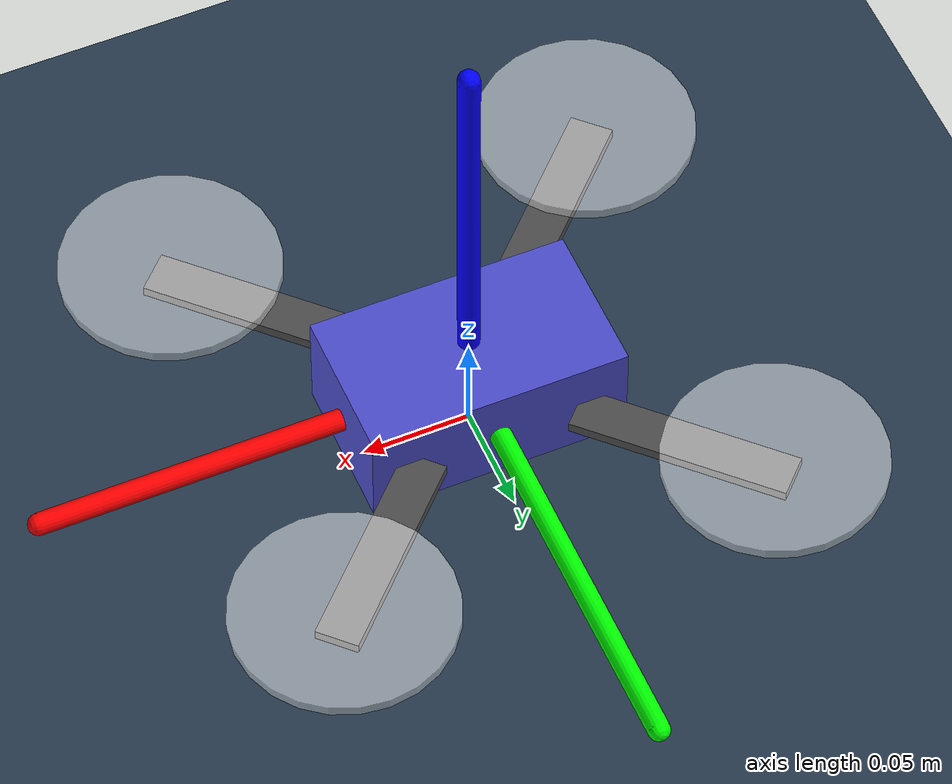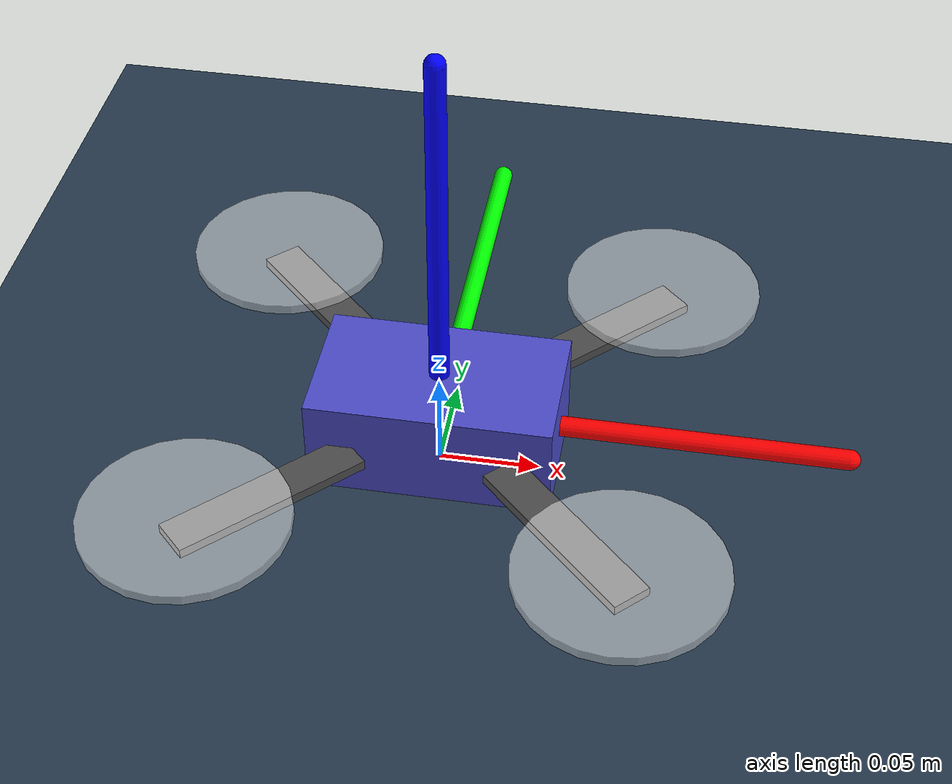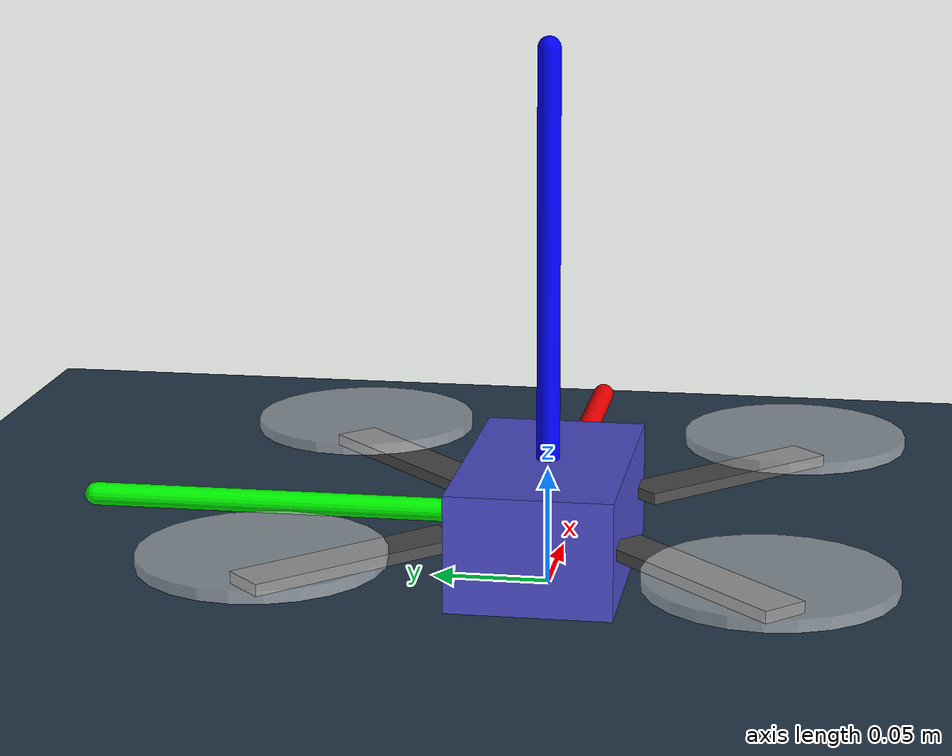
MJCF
<!-- Required Tag for Mujoco Files -->
<mujoco model="Quadrotor">
    <!-- Express angles in radians -->
    <compiler angle="radian"/>
    <option timestep="0.01" density="1.2" viscosity="0.00002"/>
    <!--
        - njmax: maximum number of scalar constraints handled at runtime
        - nconmax: Maximum number of contacts handled at runtime
    -->
    <size njmax="1000" nconmax="4000"/>

    <asset>
        <texture type="skybox" builtin="gradient" rgb1="0.3 0.5 0.7" rgb2="0 0 0" width="512" height="512"/>

        <texture name="texplane" type="2d" builtin="checker" rgb1=".2 .3 .4" rgb2=".1 0.15 0.2" width="512" height="512" mark="cross" markrgb=".8 .8 .8"/>

        <texture name="texgeom" type="cube" builtin="flat" mark="cross" width="127" height="1278"
            rgb1="0.8 0.6 0.4" rgb2="0.8 0.6 0.4" markrgb="1 1 1" random="0.01"/>

        <material name="matplane" reflectance="0.3" texture="texplane" texrepeat="1 1" texuniform="true"/>

        <material name="matgeom" texture="texgeom" texuniform="true" rgba="0.8 0.6 .4 1"/>
    </asset>

    <worldbody>
        <geom name="floor" pos="0 0 0" size="0 0 .25" type="plane" material="matplane" condim="3"/>
        <light directional="false" diffuse=".2 .2 .2" specular="0 0 0" pos="0 0 5" dir="0 0 -1" castshadow="false"/>
        <light mode="targetbodycom" target="quadrotor" castshadow="false" directional="false" diffuse=".8 .8 .8" specular="0.3 0.3 0.3" pos="0 0 4.0" dir="0 0 -1"/>
        <body name="quadrotor" pos="0 0 .03">
            <freejoint/>
            <inertial pos="0 0 0.0025" quat="0 0.707107 0 0.707107" mass="0.4" diaginertia="0.00354153 0.00189948 0.00174122" />
            <geom name="core" size="0.06 0.035 0.025" type="box" rgba="0.3 0.3 0.8 1" />
            <geom name="a00" size="0.05 0.01 0.0025" pos="0.071 0.071 0" quat="0.923785 0 0 0.382911" type="box" rgba="0.3 0.3 0.3 1" />
            <geom name="a10" size="0.05 0.01 0.0025" pos="0.071 -0.071 0" quat="0.382911 0 0 0.923785" type="box" rgba="0.3 0.3 0.3 1" />
            <geom name="a20" size="0.05 0.01 0.0025" pos="-0.071 -0.071 0" quat="-0.382911 0 0 0.923785" type="box" rgba="0.3 0.3 0.3 1" />
            <geom name="a30" size="0.05 0.01 0.0025" pos="-0.071 0.071 0" quat="0.923785 0 0 -0.382911" type="box" rgba="0.3 0.3 0.3 1" />
            <geom name="thruster0" size="0.05 0.0025" pos="0.1 0.1 0.01" type="cylinder" rgba="1 1 1 .5" />
            <geom name="thruster1" size="0.05 0.0025" pos="0.1 -0.1 0.01" type="cylinder" rgba="1 1 1 .5" />
            <geom name="thruster2" size="0.05 0.0025" pos="-0.1 -0.1 0.01" type="cylinder" rgba="1 1 1 .5" />
            <geom name="thruster3" size="0.05 0.0025" pos="-0.1 0.1 0.01" type="cylinder" rgba="1 1 1 .5" />
            <site name="thrust" pos="0 0 0" size="0.06 0.035 0.025" type="box" rgba="0.9 0.3 0.3 1" />
            <site name="rateX" pos="0 0 0" size="0.06 0.035 0.025" type="box"  rgba="0.9 0.3 0.3 1" />
            <site name="rateY" pos="0 0 0" size="0.06 0.035 0.025" type="box"  rgba="0.9 0.3 0.3 1" />
            <site name="rateZ" pos="0 0 0" size="0.06 0.035 0.025" type="box"  rgba="0.9 0.3 0.3 1" />
            <site name="site1" pos="0 0 0" size="0.01" />
            <site name="qcX" pos="0.1 0 0" quat="-0.707107 0 0.707107 0" size="0.005 0.1" type="capsule" rgba="1 0 0 1" />
            <site name="qcY" pos="0 0.1 0" quat="0 0 0.707107 0.707107" size="0.005 0.1" type="capsule" rgba="0 1 0 1" />
            <site name="qcZ" pos="0 0 0.1" quat="0.707107 0 0 0" size="0.005 0.1" type="capsule" rgba="0 0 1 1" />
        </body>
    </worldbody>

    <actuator>
        <general site="thrust" ctrllimited="true" ctrlrange="-2 1" />
        <general site="thrust" ctrllimited="true" ctrlrange="-2 1" gear="0 1 0 0 0 0" />
        <general site="thrust" ctrllimited="true" ctrlrange="0 4" gear="0 0 1 0 0 0" />
        <general site="rateX" ctrllimited="true" ctrlrange="-1 8" gear="0 0 0 1 0 0" biastype="affine" gainprm="0.1 0 0 0 0 0 0 0 0 0" biasprm="0 0 -0.1 0 0 0 0 0 0 0" />
        <general site="rateY" ctrllimited="true" ctrlrange="-1 8" gear="0 0 0 0 1 0" biastype="affine" gainprm="0.1 0 0 0 0 0 0 0 0 0" biasprm="0 0 -0.1 0 0 0 0 0 0 0" />
        <general site="rateZ" ctrllimited="true" ctrlrange="-1 8" gear="0 0 0 0 0 1" biastype="affine" gainprm="0.1 0 0 0 0 0 0 0 0 0" biasprm="0 0 -0.1 0 0 0 0 0 0 0" />
    </actuator>
    <sensor>
		<frameangacc name="frameangacc" objtype="xbody" objname="quadrotor" noise="0"/>
		<frameangvel name="frameangvel" objtype="xbody" objname="quadrotor" noise="0"/>
		<framepos name="framepos" objtype="xbody" objname="quadrotor" noise="0"/>
		<framequat name="framequat" objtype="xbody" objname="quadrotor" noise="0"/>
	</sensor>
</mujoco>
